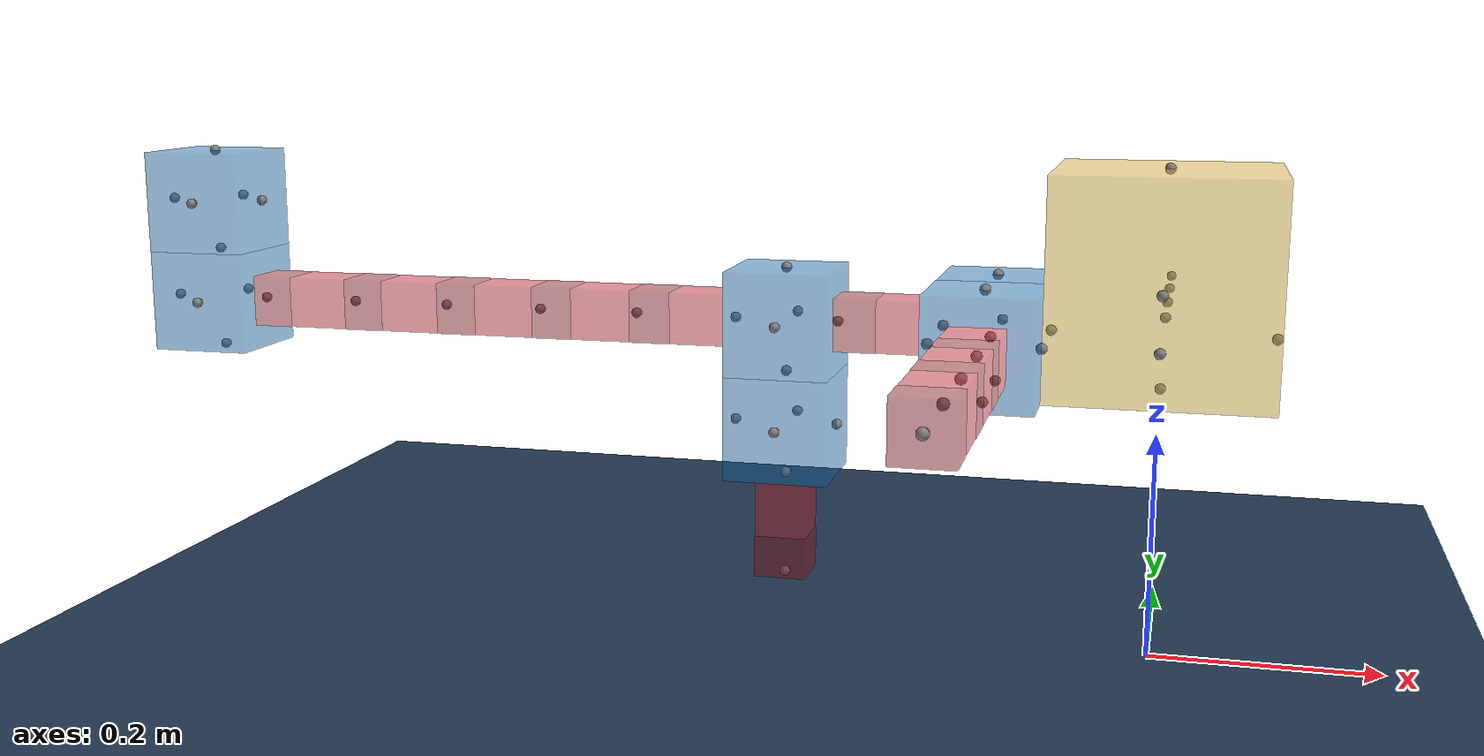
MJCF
<mujoco model="MuJoCo Model">
  <compiler angle="radian"/>

  <option integrator="implicitfast"/>

  <visual>
    <global offwidth="1280" offheight="960"/>
  </visual>

  <default>
    <default class="robot-main">
      <default class="robot-0-12-0-main"/>
      <default class="robot-0-2-3-main"/>
      <default class="robot-2-19-0-main"/>
      <default class="robot-2-13-2-main"/>
      <default class="robot-12-5-0-main">
        <default class="robot-12-5-0-5-10-0-main"/>
      </default>
      <default class="robot-13-18-0-main"/>
      <default class="robot-18-6-0-main">
        <default class="robot-18-6-0-6-15-0-main"/>
      </default>
      <default class="robot-19-9-0-main">
        <default class="robot-19-9-0-9-4-0-main">
          <default class="robot-19-9-0-9-4-0-4-17-0-main"/>
        </default>
        <default class="robot-19-9-0-9-1-4-main">
          <default class="robot-19-9-0-9-1-4-1-3-0-main"/>
        </default>
        <default class="robot-19-9-0-17-7-0-main">
          <default class="robot-19-9-0-17-7-0-7-11-0-main"/>
          <default class="robot-19-9-0-17-7-0-11-8-0-main">
            <default class="robot-19-9-0-17-7-0-11-8-0-8-14-0-main"/>
          </default>
          <default class="robot-19-9-0-17-7-0-14-16-3-main"/>
        </default>
      </default>
    </default>
  </default>

  <asset>
    <texture type="2d" colorspace="auto" name="grid" builtin="checker" rgb1="0.1 0.2 0.3" rgb2="0.2 0.3 0.4" width="600" height="600"/>
    <material name="grid" texture="grid" texuniform="true" texrepeat="3 3" reflectance="0.2"/>
  </asset>

  <worldbody>
    <geom name="floor" size="1 1 0.1" type="plane" material="grid"/>
    <site pos="0 0 0.320634"/>
    <light name="light" pos="0 0 1" dir="0 0 -1" castshadow="false"/>
    <body name="robot-world" pos="0 0 0.320634">
      <joint type="free"/>
      <body name="robot-core">
        <geom name="robot-core" size="0.1 0.1 0.1" pos="0 0.1 0" type="box" mass="1" rgba="0.992157 0.792157 0.25098 0.5"/>
        <site name="robot-core-front" pos="0 0.2 -0.05"/>
        <site name="robot-core-back" pos="0 0 -0.05" quat="0 0 0 1"/>
        <site name="robot-core-left" pos="-0.1 0.1 -0.05" quat="0.707107 0 0 0.707107"/>
        <site name="robot-core-right" pos="0.1 0.1 -0.05" quat="-0.707107 0 0 0.707107"/>
        <site name="robot-core-top" pos="0 0.1 0.1" quat="0.707107 0.707107 0 0"/>
        <site name="robot-core-bottom" pos="0 0.1 -0.1" quat="0 0 -0.707107 0.707107"/>
        <body name="robot-0-12-0-hinge" pos="0 0.2 -0.05">
          <body name="robot-0-12-0-stator" pos="0 0.03 0">
            <geom name="robot-0-12-0-stator" size="0.02475 0.0297 0.02475" type="box" mass="0.02" rgba="0.87451 0.160784 0.207843 0.5"/>
          </body>
          <body name="robot-0-12-0-rotor" pos="0 0.08 0">
            <joint name="robot-0-12-0-servo" pos="0 -0.02 0" axis="0 0 1"/>
            <geom name="robot-0-12-0-rotor" size="0.025 0.02 0.025" type="box" mass="0.04" rgba="0.627451 0.0941176 0.129412 0.5"/>
            <site name="robot-0-12-0-hinge-front" pos="0 0.02 0"/>
            <body name="robot-12-5-0-hinge" pos="0 0.02 0" quat="0.707107 0 0.707107 0">
              <body name="robot-12-5-0-stator" pos="0 0.03 0">
                <geom name="robot-12-5-0-stator" size="0.02475 0.0297 0.02475" type="box" mass="0.02" rgba="0.87451 0.160784 0.207843 0.5"/>
              </body>
              <body name="robot-12-5-0-rotor" pos="0 0.08 0">
                <joint name="robot-12-5-0-servo" pos="0 -0.02 0" axis="0 0 1"/>
                <geom name="robot-12-5-0-rotor" size="0.025 0.02 0.025" type="box" mass="0.04" rgba="0.627451 0.0941176 0.129412 0.5"/>
                <site name="robot-12-5-0-hinge-front" pos="0 0.02 0"/>
                <body name="robot-12-5-0-5-10-0-hinge" pos="0 0.02 0" quat="0.707107 0 0.707107 0">
                  <body name="robot-12-5-0-5-10-0-stator" pos="0 0.03 0">
                    <geom name="robot-12-5-0-5-10-0-stator" size="0.02475 0.0297 0.02475" type="box" mass="0.02" rgba="0.87451 0.160784 0.207843 0.5"/>
                  </body>
                  <body name="robot-12-5-0-5-10-0-rotor" pos="0 0.08 0">
                    <joint name="robot-12-5-0-5-10-0-servo" pos="0 -0.02 0" axis="0 0 1"/>
                    <geom name="robot-12-5-0-5-10-0-rotor" size="0.025 0.02 0.025" type="box" mass="0.04" rgba="0.627451 0.0941176 0.129412 0.5"/>
                    <site name="robot-12-5-0-5-10-0-hinge-front" pos="0 0.02 0"/>
                  </body>
                </body>
              </body>
            </body>
          </body>
        </body>
        <body name="robot-0-2-3-brick" pos="-0.1 0.1 -0.05" quat="0 -0.707107 0.707107 0">
          <geom name="robot-0-2-3-brick" size="0.05 0.05 0.05" pos="0 0.05 0" type="box" mass="0.055" rgba="0.109804 0.466667 0.764706 0.5"/>
          <site name="robot-0-2-3-brick-front" pos="0 0.1 0"/>
          <site name="robot-0-2-3-brick-left" pos="-0.05 0.05 0" quat="0.707107 0 0 0.707107"/>
          <site name="robot-0-2-3-brick-right" pos="0.05 0.05 0" quat="-0.707107 0 0 0.707107"/>
          <site name="robot-0-2-3-brick-top" pos="0 0.05 0.05" quat="0.707107 0.707107 0 0"/>
          <site name="robot-0-2-3-brick-bottom" pos="0 0.05 -0.05" quat="0 0 -0.707107 0.707107"/>
          <body name="robot-2-19-0-hinge" pos="0 0.1 0" quat="-0.707107 0 0.707107 0">
            <body name="robot-2-19-0-stator" pos="0 0.03 0">
              <geom name="robot-2-19-0-stator" size="0.02475 0.0297 0.02475" type="box" mass="0.02" rgba="0.87451 0.160784 0.207843 0.5"/>
            </body>
            <body name="robot-2-19-0-rotor" pos="0 0.08 0">
              <joint name="robot-2-19-0-servo" pos="0 -0.02 0" axis="0 0 1"/>
              <geom name="robot-2-19-0-rotor" size="0.025 0.02 0.025" type="box" mass="0.04" rgba="0.627451 0.0941176 0.129412 0.5"/>
              <site name="robot-2-19-0-hinge-front" pos="0 0.02 0"/>
              <body name="robot-19-9-0-brick" pos="0 0.02 0" quat="0.707107 0 0.707107 0">
                <geom name="robot-19-9-0-brick" size="0.05 0.05 0.05" pos="0 0.05 0" type="box" mass="0.055" rgba="0.109804 0.466667 0.764706 0.5"/>
                <site name="robot-19-9-0-brick-front" pos="0 0.1 0"/>
                <site name="robot-19-9-0-brick-left" pos="-0.05 0.05 0" quat="0.707107 0 0 0.707107"/>
                <site name="robot-19-9-0-brick-right" pos="0.05 0.05 0" quat="-0.707107 0 0 0.707107"/>
                <site name="robot-19-9-0-brick-top" pos="0 0.05 0.05" quat="0.707107 0.707107 0 0"/>
                <site name="robot-19-9-0-brick-bottom" pos="0 0.05 -0.05" quat="0 0 -0.707107 0.707107"/>
                <body name="robot-19-9-0-9-4-0-hinge" pos="0 0.1 0">
                  <body name="robot-19-9-0-9-4-0-stator" pos="0 0.03 0">
                    <geom name="robot-19-9-0-9-4-0-stator" size="0.02475 0.0297 0.02475" type="box" mass="0.02" rgba="0.87451 0.160784 0.207843 0.5"/>
                  </body>
                  <body name="robot-19-9-0-9-4-0-rotor" pos="0 0.08 0">
                    <joint name="robot-19-9-0-9-4-0-servo" pos="0 -0.02 0" axis="0 0 1"/>
                    <geom name="robot-19-9-0-9-4-0-rotor" size="0.025 0.02 0.025" type="box" mass="0.04" rgba="0.627451 0.0941176 0.129412 0.5"/>
                    <site name="robot-19-9-0-9-4-0-hinge-front" pos="0 0.02 0"/>
                    <body name="robot-19-9-0-9-4-0-4-17-0-hinge" pos="0 0.02 0" quat="-0.707107 0 0.707107 0">
                      <body name="robot-19-9-0-9-4-0-4-17-0-stator" pos="0 0.03 0">
                        <geom name="robot-19-9-0-9-4-0-4-17-0-stator" size="0.02475 0.0297 0.02475" type="box" mass="0.02" rgba="0.87451 0.160784 0.207843 0.5"/>
                      </body>
                      <body name="robot-19-9-0-9-4-0-4-17-0-rotor" pos="0 0.08 0">
                        <joint name="robot-19-9-0-9-4-0-4-17-0-servo" pos="0 -0.02 0" axis="0 0 1"/>
                        <geom name="robot-19-9-0-9-4-0-4-17-0-rotor" size="0.025 0.02 0.025" type="box" mass="0.04" rgba="0.627451 0.0941176 0.129412 0.5"/>
                        <site name="robot-19-9-0-9-4-0-4-17-0-hinge-front" pos="0 0.02 0"/>
                        <body name="robot-19-9-0-17-7-0-hinge" pos="0 0.02 0" quat="-0.707107 0 0.707107 0">
                          <body name="robot-19-9-0-17-7-0-stator" pos="0 0.03 0">
                            <geom name="robot-19-9-0-17-7-0-stator" size="0.02475 0.0297 0.02475" type="box" mass="0.02" rgba="0.87451 0.160784 0.207843 0.5"/>
                          </body>
                          <body name="robot-19-9-0-17-7-0-rotor" pos="0 0.08 0">
                            <joint name="robot-19-9-0-17-7-0-servo" pos="0 -0.02 0" axis="0 0 1"/>
                            <geom name="robot-19-9-0-17-7-0-rotor" size="0.025 0.02 0.025" type="box" mass="0.04" rgba="0.627451 0.0941176 0.129412 0.5"/>
                            <site name="robot-19-9-0-17-7-0-hinge-front" pos="0 0.02 0"/>
                            <body name="robot-19-9-0-17-7-0-7-11-0-hinge" pos="0 0.02 0" quat="-0.707107 0 0.707107 0">
                              <body name="robot-19-9-0-17-7-0-7-11-0-stator" pos="0 0.03 0">
                                <geom name="robot-19-9-0-17-7-0-7-11-0-stator" size="0.02475 0.0297 0.02475" type="box" mass="0.02" rgba="0.87451 0.160784 0.207843 0.5"/>
                              </body>
                              <body name="robot-19-9-0-17-7-0-7-11-0-rotor" pos="0 0.08 0">
                                <joint name="robot-19-9-0-17-7-0-7-11-0-servo" pos="0 -0.02 0" axis="0 0 1"/>
                                <geom name="robot-19-9-0-17-7-0-7-11-0-rotor" size="0.025 0.02 0.025" type="box" mass="0.04" rgba="0.627451 0.0941176 0.129412 0.5"/>
                                <site name="robot-19-9-0-17-7-0-7-11-0-hinge-front" pos="0 0.02 0"/>
                                <body name="robot-19-9-0-17-7-0-11-8-0-hinge" pos="0 0.02 0" quat="-0.707107 0 0.707107 0">
                                  <body name="robot-19-9-0-17-7-0-11-8-0-stator" pos="0 0.03 0">
                                    <geom name="robot-19-9-0-17-7-0-11-8-0-stator" size="0.02475 0.0297 0.02475" type="box" mass="0.02" rgba="0.87451 0.160784 0.207843 0.5"/>
                                  </body>
                                  <body name="robot-19-9-0-17-7-0-11-8-0-rotor" pos="0 0.08 0">
                                    <joint name="robot-19-9-0-17-7-0-11-8-0-servo" pos="0 -0.02 0" axis="0 0 1"/>
                                    <geom name="robot-19-9-0-17-7-0-11-8-0-rotor" size="0.025 0.02 0.025" type="box" mass="0.04" rgba="0.627451 0.0941176 0.129412 0.5"/>
                                    <site name="robot-19-9-0-17-7-0-11-8-0-hinge-front" pos="0 0.02 0"/>
                                    <body name="robot-19-9-0-17-7-0-11-8-0-8-14-0-brick" pos="0 0.02 0" quat="-0.707107 0 0.707107 0">
                                      <geom name="robot-19-9-0-17-7-0-11-8-0-8-14-0-brick" size="0.05 0.05 0.05" pos="0 0.05 0" type="box" mass="0.055" rgba="0.109804 0.466667 0.764706 0.5"/>
                                      <site name="robot-19-9-0-17-7-0-11-8-0-8-14-0-brick-front" pos="0 0.1 0"/>
                                      <site name="robot-19-9-0-17-7-0-11-8-0-8-14-0-brick-left" pos="-0.05 0.05 0" quat="0.707107 0 0 0.707107"/>
                                      <site name="robot-19-9-0-17-7-0-11-8-0-8-14-0-brick-right" pos="0.05 0.05 0" quat="-0.707107 0 0 0.707107"/>
                                      <site name="robot-19-9-0-17-7-0-11-8-0-8-14-0-brick-top" pos="0 0.05 0.05" quat="0.707107 0.707107 0 0"/>
                                      <site name="robot-19-9-0-17-7-0-11-8-0-8-14-0-brick-bottom" pos="0 0.05 -0.05" quat="0 0 -0.707107 0.707107"/>
                                      <body name="robot-19-9-0-17-7-0-14-16-3-brick" pos="-0.05 0.05 0" quat="0.5 -0.5 0.5 0.5">
                                        <geom name="robot-19-9-0-17-7-0-14-16-3-brick" size="0.05 0.05 0.05" pos="0 0.05 0" type="box" mass="0.055" rgba="0.109804 0.466667 0.764706 0.5"/>
                                        <site name="robot-19-9-0-17-7-0-14-16-3-brick-front" pos="0 0.1 0"/>
                                        <site name="robot-19-9-0-17-7-0-14-16-3-brick-left" pos="-0.05 0.05 0" quat="0.707107 0 0 0.707107"/>
                                        <site name="robot-19-9-0-17-7-0-14-16-3-brick-right" pos="0.05 0.05 0" quat="-0.707107 0 0 0.707107"/>
                                        <site name="robot-19-9-0-17-7-0-14-16-3-brick-top" pos="0 0.05 0.05" quat="0.707107 0.707107 0 0"/>
                                        <site name="robot-19-9-0-17-7-0-14-16-3-brick-bottom" pos="0 0.05 -0.05" quat="0 0 -0.707107 0.707107"/>
                                      </body>
                                    </body>
                                  </body>
                                </body>
                              </body>
                            </body>
                          </body>
                        </body>
                      </body>
                    </body>
                  </body>
                </body>
                <body name="robot-19-9-0-9-1-4-brick" pos="0 0.05 0.05" quat="0 0 0.707107 0.707107">
                  <geom name="robot-19-9-0-9-1-4-brick" size="0.05 0.05 0.05" pos="0 0.05 0" type="box" mass="0.055" rgba="0.109804 0.466667 0.764706 0.5"/>
                  <site name="robot-19-9-0-9-1-4-brick-front" pos="0 0.1 0"/>
                  <site name="robot-19-9-0-9-1-4-brick-left" pos="-0.05 0.05 0" quat="0.707107 0 0 0.707107"/>
                  <site name="robot-19-9-0-9-1-4-brick-right" pos="0.05 0.05 0" quat="-0.707107 0 0 0.707107"/>
                  <site name="robot-19-9-0-9-1-4-brick-top" pos="0 0.05 0.05" quat="0.707107 0.707107 0 0"/>
                  <site name="robot-19-9-0-9-1-4-brick-bottom" pos="0 0.05 -0.05" quat="0 0 -0.707107 0.707107"/>
                  <body name="robot-19-9-0-9-1-4-1-3-0-hinge" pos="0 0.1 0" quat="0 0 1 0">
                    <body name="robot-19-9-0-9-1-4-1-3-0-stator" pos="0 0.03 0">
                      <geom name="robot-19-9-0-9-1-4-1-3-0-stator" size="0.02475 0.0297 0.02475" type="box" mass="0.02" rgba="0.87451 0.160784 0.207843 0.5"/>
                    </body>
                    <body name="robot-19-9-0-9-1-4-1-3-0-rotor" pos="0 0.08 0">
                      <joint name="robot-19-9-0-9-1-4-1-3-0-servo" pos="0 -0.02 0" axis="0 0 1"/>
                      <geom name="robot-19-9-0-9-1-4-1-3-0-rotor" size="0.025 0.02 0.025" type="box" mass="0.04" rgba="0.627451 0.0941176 0.129412 0.5"/>
                      <site name="robot-19-9-0-9-1-4-1-3-0-hinge-front" pos="0 0.02 0"/>
                    </body>
                  </body>
                </body>
              </body>
            </body>
          </body>
          <body name="robot-2-13-2-brick" pos="0.05 0.05 0" quat="0 -0.707107 -0.707107 0">
            <geom name="robot-2-13-2-brick" size="0.05 0.05 0.05" pos="0 0.05 0" type="box" mass="0.055" rgba="0.109804 0.466667 0.764706 0.5"/>
            <site name="robot-2-13-2-brick-front" pos="0 0.1 0"/>
            <site name="robot-2-13-2-brick-left" pos="-0.05 0.05 0" quat="0.707107 0 0 0.707107"/>
            <site name="robot-2-13-2-brick-right" pos="0.05 0.05 0" quat="-0.707107 0 0 0.707107"/>
            <site name="robot-2-13-2-brick-top" pos="0 0.05 0.05" quat="0.707107 0.707107 0 0"/>
            <site name="robot-2-13-2-brick-bottom" pos="0 0.05 -0.05" quat="0 0 -0.707107 0.707107"/>
            <body name="robot-13-18-0-hinge" pos="0 0.1 0" quat="0.707107 0 0.707107 0">
              <body name="robot-13-18-0-stator" pos="0 0.03 0">
                <geom name="robot-13-18-0-stator" size="0.02475 0.0297 0.02475" type="box" mass="0.02" rgba="0.87451 0.160784 0.207843 0.5"/>
              </body>
              <body name="robot-13-18-0-rotor" pos="0 0.08 0">
                <joint name="robot-13-18-0-servo" pos="0 -0.02 0" axis="0 0 1"/>
                <geom name="robot-13-18-0-rotor" size="0.025 0.02 0.025" type="box" mass="0.04" rgba="0.627451 0.0941176 0.129412 0.5"/>
                <site name="robot-13-18-0-hinge-front" pos="0 0.02 0"/>
                <body name="robot-18-6-0-hinge" pos="0 0.02 0" quat="0.707107 0 0.707107 0">
                  <body name="robot-18-6-0-stator" pos="0 0.03 0">
                    <geom name="robot-18-6-0-stator" size="0.02475 0.0297 0.02475" type="box" mass="0.02" rgba="0.87451 0.160784 0.207843 0.5"/>
                  </body>
                  <body name="robot-18-6-0-rotor" pos="0 0.08 0">
                    <joint name="robot-18-6-0-servo" pos="0 -0.02 0" axis="0 0 1"/>
                    <geom name="robot-18-6-0-rotor" size="0.025 0.02 0.025" type="box" mass="0.04" rgba="0.627451 0.0941176 0.129412 0.5"/>
                    <site name="robot-18-6-0-hinge-front" pos="0 0.02 0"/>
                    <body name="robot-18-6-0-6-15-0-hinge" pos="0 0.02 0" quat="0.707107 0 0.707107 0">
                      <body name="robot-18-6-0-6-15-0-stator" pos="0 0.03 0">
                        <geom name="robot-18-6-0-6-15-0-stator" size="0.02475 0.0297 0.02475" type="box" mass="0.02" rgba="0.87451 0.160784 0.207843 0.5"/>
                      </body>
                      <body name="robot-18-6-0-6-15-0-rotor" pos="0 0.08 0">
                        <joint name="robot-18-6-0-6-15-0-servo" pos="0 -0.02 0" axis="0 0 1"/>
                        <geom name="robot-18-6-0-6-15-0-rotor" size="0.025 0.02 0.025" type="box" mass="0.04" rgba="0.627451 0.0941176 0.129412 0.5"/>
                        <site name="robot-18-6-0-6-15-0-hinge-front" pos="0 0.02 0"/>
                      </body>
                    </body>
                  </body>
                </body>
              </body>
            </body>
          </body>
        </body>
      </body>
    </body>
  </worldbody>

  <contact>
    <exclude body1="robot-0-12-0-stator" body2="robot-0-12-0-rotor"/>
    <exclude body1="robot-12-5-0-stator" body2="robot-12-5-0-rotor"/>
    <exclude body1="robot-12-5-0-5-10-0-stator" body2="robot-12-5-0-5-10-0-rotor"/>
    <exclude body1="robot-2-19-0-stator" body2="robot-2-19-0-rotor"/>
    <exclude body1="robot-19-9-0-9-4-0-stator" body2="robot-19-9-0-9-4-0-rotor"/>
    <exclude body1="robot-19-9-0-9-4-0-4-17-0-stator" body2="robot-19-9-0-9-4-0-4-17-0-rotor"/>
    <exclude body1="robot-19-9-0-17-7-0-stator" body2="robot-19-9-0-17-7-0-rotor"/>
    <exclude body1="robot-19-9-0-17-7-0-7-11-0-stator" body2="robot-19-9-0-17-7-0-7-11-0-rotor"/>
    <exclude body1="robot-19-9-0-17-7-0-11-8-0-stator" body2="robot-19-9-0-17-7-0-11-8-0-rotor"/>
    <exclude body1="robot-19-9-0-9-1-4-1-3-0-stator" body2="robot-19-9-0-9-1-4-1-3-0-rotor"/>
    <exclude body1="robot-13-18-0-stator" body2="robot-13-18-0-rotor"/>
    <exclude body1="robot-18-6-0-stator" body2="robot-18-6-0-rotor"/>
    <exclude body1="robot-18-6-0-6-15-0-stator" body2="robot-18-6-0-6-15-0-rotor"/>
  </contact>

  <actuator>
    <general name="robot-0-12-0-servo" joint="robot-0-12-0-servo" ctrlrange="-1.5708 1.5708" dynprm="0 0 0 0 0 0 0 0 0 0" biastype="affine" biasprm="0 -1 -1"/>
    <general name="robot-2-19-0-servo" joint="robot-2-19-0-servo" ctrlrange="-1.5708 1.5708" dynprm="0 0 0 0 0 0 0 0 0 0" biastype="affine" biasprm="0 -1 -1"/>
    <general name="robot-12-5-0-servo" joint="robot-12-5-0-servo" ctrlrange="-1.5708 1.5708" dynprm="0 0 0 0 0 0 0 0 0 0" biastype="affine" biasprm="0 -1 -1"/>
    <general name="robot-12-5-0-5-10-0-servo" joint="robot-12-5-0-5-10-0-servo" ctrlrange="-1.5708 1.5708" dynprm="0 0 0 0 0 0 0 0 0 0" biastype="affine" biasprm="0 -1 -1"/>
    <general name="robot-13-18-0-servo" joint="robot-13-18-0-servo" ctrlrange="-1.5708 1.5708" dynprm="0 0 0 0 0 0 0 0 0 0" biastype="affine" biasprm="0 -1 -1"/>
    <general name="robot-18-6-0-servo" joint="robot-18-6-0-servo" ctrlrange="-1.5708 1.5708" dynprm="0 0 0 0 0 0 0 0 0 0" biastype="affine" biasprm="0 -1 -1"/>
    <general name="robot-18-6-0-6-15-0-servo" joint="robot-18-6-0-6-15-0-servo" ctrlrange="-1.5708 1.5708" dynprm="0 0 0 0 0 0 0 0 0 0" biastype="affine" biasprm="0 -1 -1"/>
    <general name="robot-19-9-0-9-4-0-servo" joint="robot-19-9-0-9-4-0-servo" ctrlrange="-1.5708 1.5708" dynprm="0 0 0 0 0 0 0 0 0 0" biastype="affine" biasprm="0 -1 -1"/>
    <general name="robot-19-9-0-9-4-0-4-17-0-servo" joint="robot-19-9-0-9-4-0-4-17-0-servo" ctrlrange="-1.5708 1.5708" dynprm="0 0 0 0 0 0 0 0 0 0" biastype="affine" biasprm="0 -1 -1"/>
    <general name="robot-19-9-0-9-1-4-1-3-0-servo" joint="robot-19-9-0-9-1-4-1-3-0-servo" ctrlrange="-1.5708 1.5708" dynprm="0 0 0 0 0 0 0 0 0 0" biastype="affine" biasprm="0 -1 -1"/>
    <general name="robot-19-9-0-17-7-0-servo" joint="robot-19-9-0-17-7-0-servo" ctrlrange="-1.5708 1.5708" dynprm="0 0 0 0 0 0 0 0 0 0" biastype="affine" biasprm="0 -1 -1"/>
    <general name="robot-19-9-0-17-7-0-7-11-0-servo" joint="robot-19-9-0-17-7-0-7-11-0-servo" ctrlrange="-1.5708 1.5708" dynprm="0 0 0 0 0 0 0 0 0 0" biastype="affine" biasprm="0 -1 -1"/>
    <general name="robot-19-9-0-17-7-0-11-8-0-servo" joint="robot-19-9-0-17-7-0-11-8-0-servo" ctrlrange="-1.5708 1.5708" dynprm="0 0 0 0 0 0 0 0 0 0" biastype="affine" biasprm="0 -1 -1"/>
  </actuator>
</mujoco>
